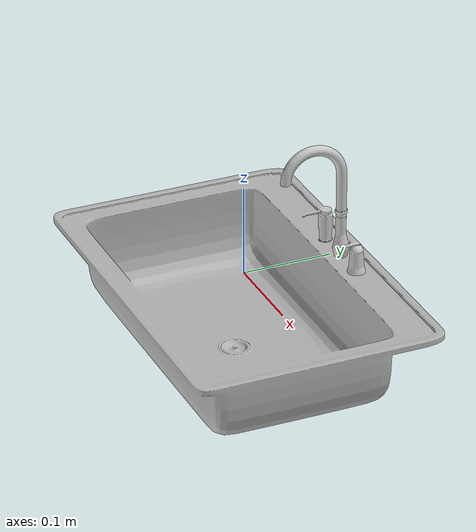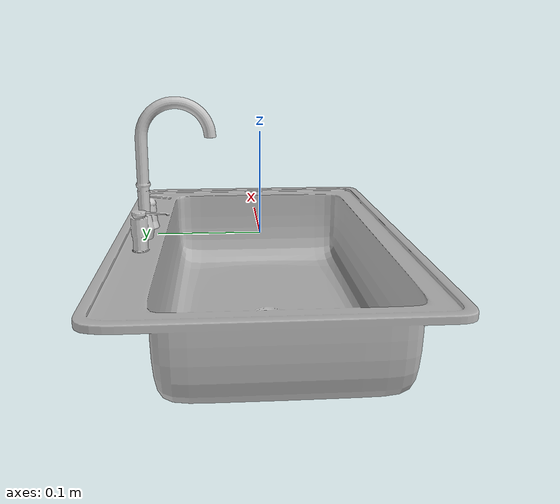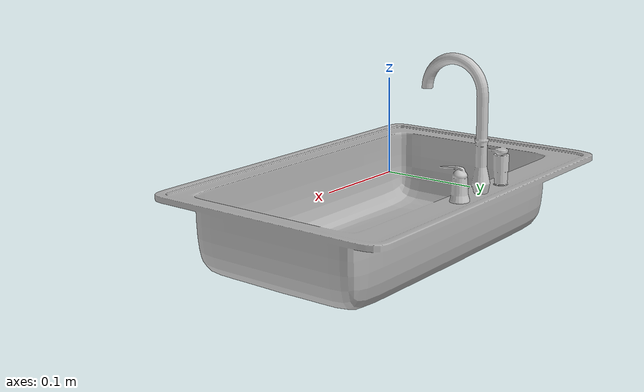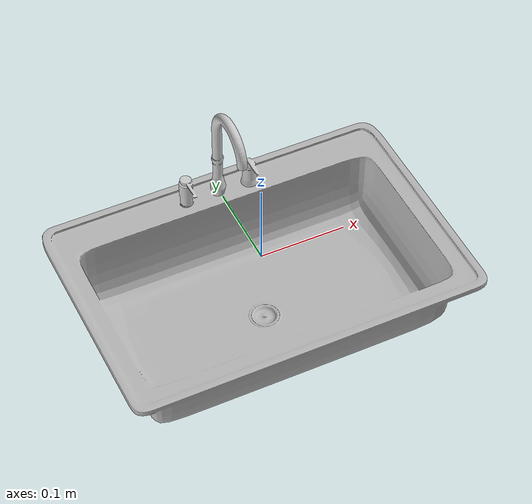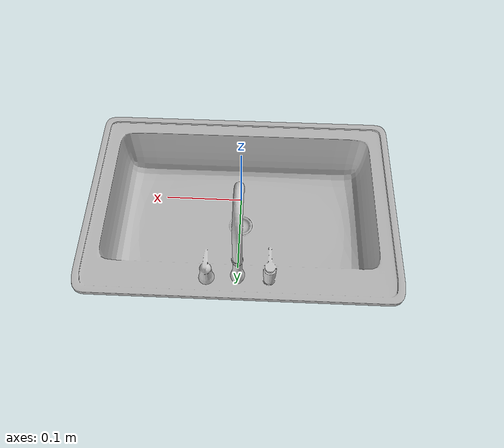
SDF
<?xml version='1.0'?>
<sdf version='1.6'>
  <model name='sink'>
    <link name='link_1'>
      <visual name='visual'>
        <pose frame=''>0 0 0 0 -0 0</pose>
        <geometry>
          <mesh>
            <uri>model://sink/meshes/sink.dae</uri>
            <scale>0.5 0.5 0.5</scale>
          </mesh>
        </geometry>
 	<material>
	  <emissive>0.3 0.3 0.3 0.3</emissive>
	</material>
      <transparency>0</transparency>
      </visual>
      <collision name='collision'>
        <pose frame=''>0 0 0 0 -0 0</pose>
        <geometry>
          <mesh>
            <uri>model://sink/meshes/sink.dae</uri>
            <scale>0.5 0.5 0.5</scale>
          </mesh>
        </geometry>
      </collision>
    </link>
    <static>1</static>
    <allow_auto_disable>1</allow_auto_disable>
  </model>
</sdf>
